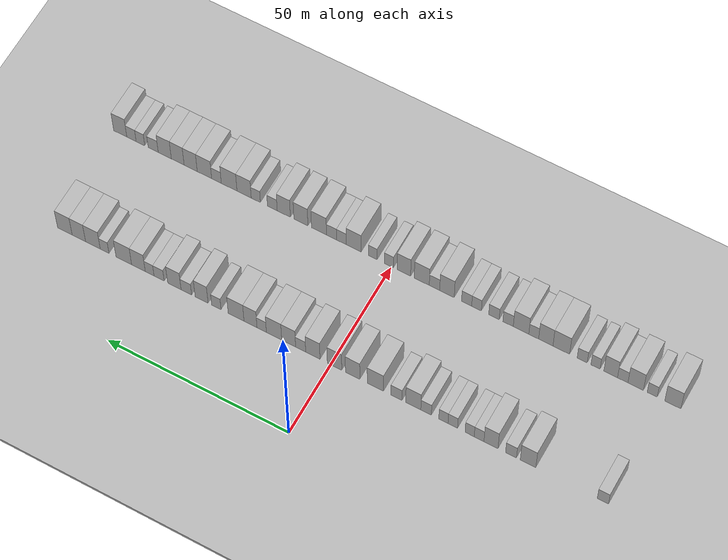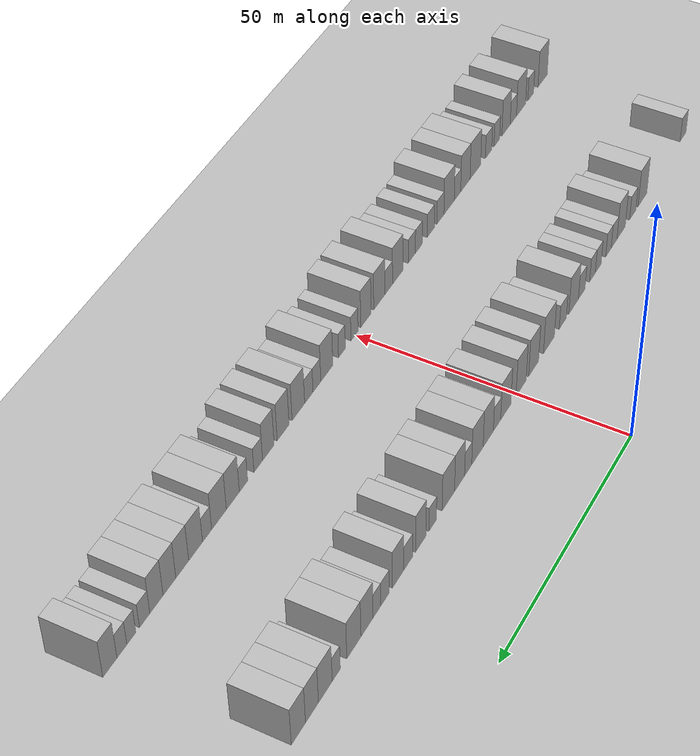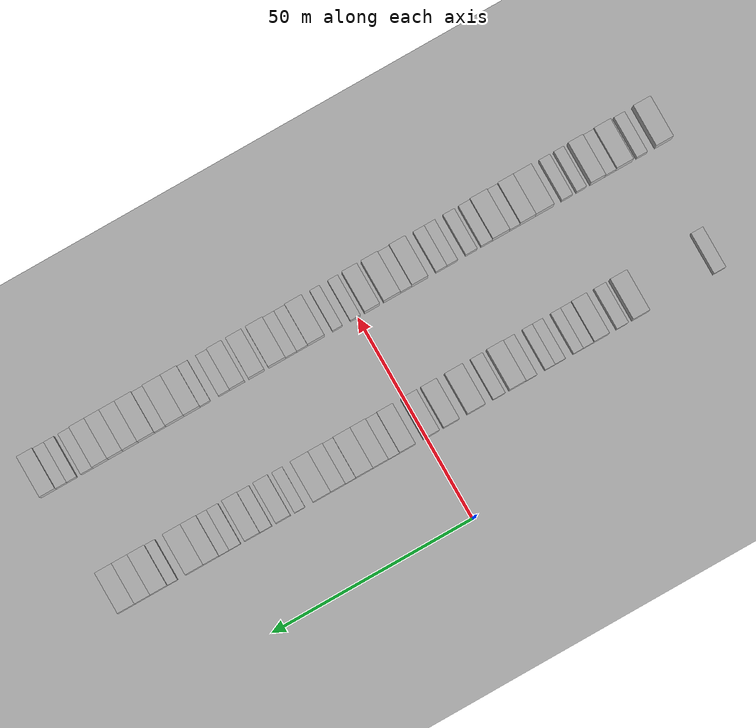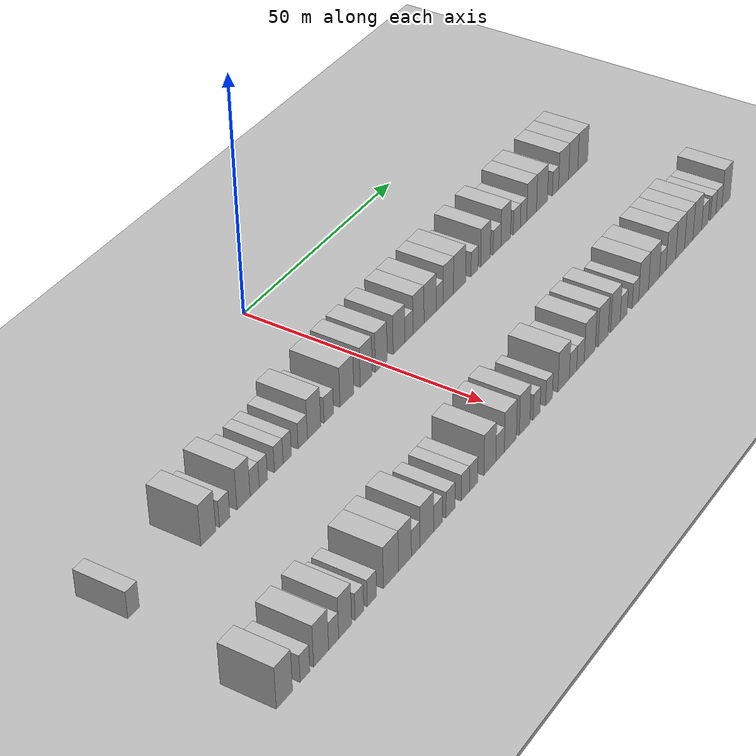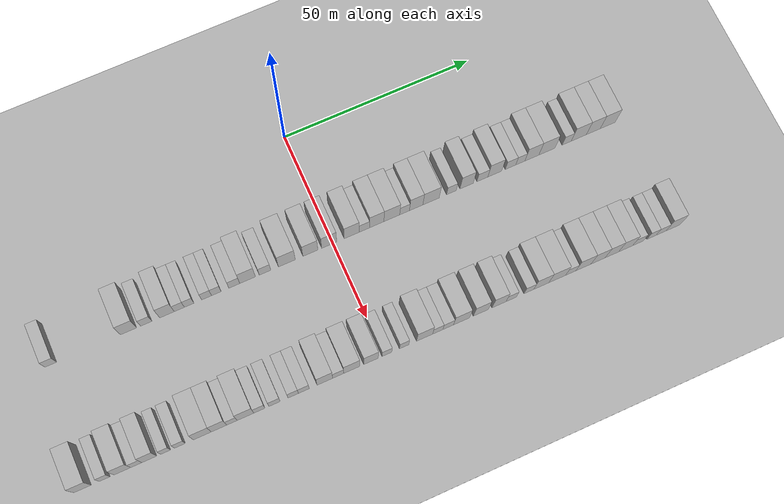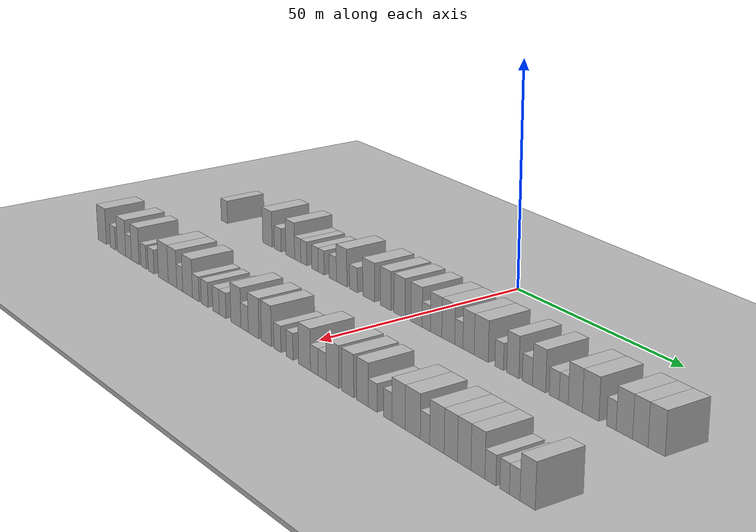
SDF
<sdf version="1.6">
 <world name="default">
  <include><name>ground_plane_1</name><uri>model://HANNAS_ground_plane</uri></include>
  <include>
   <name>ground_plane_2</name>
   <uri>model://HANNAS_ground_plane</uri>
   <pose>100 0 0  0 0 0</pose>
  </include>
  <model name="building_36">
   <static>1</static>
   <pose>25.0000 -72.6482 0 0.000000 0.000000 0.000000</pose>
   <link name="link">
    <pose>0 0 3.00 0 0 0</pose>
    <collision name="collision"><geometry><box><size>10.0000 2.9316 6.0000</size></box></geometry></collision>
    <visual name="visual">
     <cast_shadows>0</cast_shadows>
     <geometry><box><size>10.0000 2.9316 6.0000</size></box></geometry>
     <material>
      <script>
       <uri>model://HANNAS_wall/materials/scripts</uri>
       <uri>model://HANNAS_wall/materials/textures</uri>
       <name>vrc/HANNAS_wall</name>
      </script>
     </material>
    </visual>
   </link>
  </model>
  <model name="building_37">
   <static>1</static>
   <pose>25.0000 -53.0157 0 0.000000 0.000000 0.000000</pose>
   <link name="link">
    <pose>0 0 4.50 0 0 0</pose>
    <collision name="collision"><geometry><box><size>10.0000 4.1112 9.0000</size></box></geometry></collision>
    <visual name="visual">
     <cast_shadows>0</cast_shadows>
     <geometry><box><size>10.0000 4.1112 9.0000</size></box></geometry>
     <material>
      <script>
       <uri>model://HANNAS_wall/materials/scripts</uri>
       <uri>model://HANNAS_wall/materials/textures</uri>
       <name>vrc/HANNAS_wall</name>
      </script>
     </material>
    </visual>
   </link>
  </model>
  <model name="building_38">
   <static>1</static>
   <pose>25.0000 -48.5144 0 0.000000 0.000000 0.000000</pose>
   <link name="link">
    <pose>0 0 3.00 0 0 0</pose>
    <collision name="collision"><geometry><box><size>10.0000 2.8913 6.0000</size></box></geometry></collision>
    <visual name="visual">
     <cast_shadows>0</cast_shadows>
     <geometry><box><size>10.0000 2.8913 6.0000</size></box></geometry>
     <material>
      <script>
       <uri>model://HANNAS_wall/materials/scripts</uri>
       <uri>model://HANNAS_wall/materials/textures</uri>
       <name>vrc/HANNAS_wall</name>
      </script>
     </material>
    </visual>
   </link>
  </model>
  <model name="building_39">
   <static>1</static>
   <pose>25.0000 -43.2031 0 0.000000 0.000000 0.000000</pose>
   <link name="link">
    <pose>0 0 4.50 0 0 0</pose>
    <collision name="collision"><geometry><box><size>10.0000 3.7314 9.0000</size></box></geometry></collision>
    <visual name="visual">
     <cast_shadows>0</cast_shadows>
     <geometry><box><size>10.0000 3.7314 9.0000</size></box></geometry>
     <material>
      <script>
       <uri>model://HANNAS_wall/materials/scripts</uri>
       <uri>model://HANNAS_wall/materials/textures</uri>
       <name>vrc/HANNAS_wall</name>
      </script>
     </material>
    </visual>
   </link>
  </model>
  <model name="building_40">
   <static>1</static>
   <pose>25.0000 -40.0389 0 0.000000 0.000000 0.000000</pose>
   <link name="link">
    <pose>0 0 3.00 0 0 0</pose>
    <collision name="collision"><geometry><box><size>10.0000 2.5972 6.0000</size></box></geometry></collision>
    <visual name="visual">
     <cast_shadows>0</cast_shadows>
     <geometry><box><size>10.0000 2.5972 6.0000</size></box></geometry>
     <material>
      <script>
       <uri>model://HANNAS_wall/materials/scripts</uri>
       <uri>model://HANNAS_wall/materials/textures</uri>
       <name>vrc/HANNAS_wall</name>
      </script>
     </material>
    </visual>
   </link>
  </model>
  <model name="building_41">
   <static>1</static>
   <pose>25.0000 -37.5212 0 0.000000 0.000000 0.000000</pose>
   <link name="link">
    <pose>0 0 3.00 0 0 0</pose>
    <collision name="collision"><geometry><box><size>10.0000 2.4381 6.0000</size></box></geometry></collision>
    <visual name="visual">
     <cast_shadows>0</cast_shadows>
     <geometry><box><size>10.0000 2.4381 6.0000</size></box></geometry>
     <material>
      <script>
       <uri>model://HANNAS_wall/materials/scripts</uri>
       <uri>model://HANNAS_wall/materials/textures</uri>
       <name>vrc/HANNAS_wall</name>
      </script>
     </material>
    </visual>
   </link>
  </model>
  <model name="building_42">
   <static>1</static>
   <pose>25.0000 -33.0255 0 0.000000 0.000000 0.000000</pose>
   <link name="link">
    <pose>0 0 3.00 0 0 0</pose>
    <collision name="collision"><geometry><box><size>10.0000 2.5532 6.0000</size></box></geometry></collision>
    <visual name="visual">
     <cast_shadows>0</cast_shadows>
     <geometry><box><size>10.0000 2.5532 6.0000</size></box></geometry>
     <material>
      <script>
       <uri>model://HANNAS_wall/materials/scripts</uri>
       <uri>model://HANNAS_wall/materials/textures</uri>
       <name>vrc/HANNAS_wall</name>
      </script>
     </material>
    </visual>
   </link>
  </model>
  <model name="building_43">
   <static>1</static>
   <pose>25.0000 -30.5121 0 0.000000 0.000000 0.000000</pose>
   <link name="link">
    <pose>0 0 3.00 0 0 0</pose>
    <collision name="collision"><geometry><box><size>10.0000 2.4736 6.0000</size></box></geometry></collision>
    <visual name="visual">
     <cast_shadows>0</cast_shadows>
     <geometry><box><size>10.0000 2.4736 6.0000</size></box></geometry>
     <material>
      <script>
       <uri>model://HANNAS_wall/materials/scripts</uri>
       <uri>model://HANNAS_wall/materials/textures</uri>
       <name>vrc/HANNAS_wall</name>
      </script>
     </material>
    </visual>
   </link>
  </model>
  <model name="building_44">
   <static>1</static>
   <pose>25.0000 -25.8657 0 0.000000 0.000000 0.000000</pose>
   <link name="link">
    <pose>0 0 3.00 0 0 0</pose>
    <collision name="collision"><geometry><box><size>10.0000 2.8192 6.0000</size></box></geometry></collision>
    <visual name="visual">
     <cast_shadows>0</cast_shadows>
     <geometry><box><size>10.0000 2.8192 6.0000</size></box></geometry>
     <material>
      <script>
       <uri>model://HANNAS_wall/materials/scripts</uri>
       <uri>model://HANNAS_wall/materials/textures</uri>
       <name>vrc/HANNAS_wall</name>
      </script>
     </material>
    </visual>
   </link>
  </model>
  <model name="building_45">
   <static>1</static>
   <pose>25.0000 -22.4198 0 0.000000 0.000000 0.000000</pose>
   <link name="link">
    <pose>0 0 4.50 0 0 0</pose>
    <collision name="collision"><geometry><box><size>10.0000 4.0725 9.0000</size></box></geometry></collision>
    <visual name="visual">
     <cast_shadows>0</cast_shadows>
     <geometry><box><size>10.0000 4.0725 9.0000</size></box></geometry>
     <material>
      <script>
       <uri>model://HANNAS_wall/materials/scripts</uri>
       <uri>model://HANNAS_wall/materials/textures</uri>
       <name>vrc/HANNAS_wall</name>
      </script>
     </material>
    </visual>
   </link>
  </model>
  <model name="building_46">
   <static>1</static>
   <pose>25.0000 -17.8843 0 0.000000 0.000000 0.000000</pose>
   <link name="link">
    <pose>0 0 3.00 0 0 0</pose>
    <collision name="collision"><geometry><box><size>10.0000 2.9986 6.0000</size></box></geometry></collision>
    <visual name="visual">
     <cast_shadows>0</cast_shadows>
     <geometry><box><size>10.0000 2.9986 6.0000</size></box></geometry>
     <material>
      <script>
       <uri>model://HANNAS_wall/materials/scripts</uri>
       <uri>model://HANNAS_wall/materials/textures</uri>
       <name>vrc/HANNAS_wall</name>
      </script>
     </material>
    </visual>
   </link>
  </model>
  <model name="building_47">
   <static>1</static>
   <pose>25.0000 -12.1722 0 0.000000 0.000000 0.000000</pose>
   <link name="link">
    <pose>0 0 4.50 0 0 0</pose>
    <collision name="collision"><geometry><box><size>10.0000 4.4255 9.0000</size></box></geometry></collision>
    <visual name="visual">
     <cast_shadows>0</cast_shadows>
     <geometry><box><size>10.0000 4.4255 9.0000</size></box></geometry>
     <material>
      <script>
       <uri>model://HANNAS_wall/materials/scripts</uri>
       <uri>model://HANNAS_wall/materials/textures</uri>
       <name>vrc/HANNAS_wall</name>
      </script>
     </material>
    </visual>
   </link>
  </model>
  <model name="building_48">
   <static>1</static>
   <pose>25.0000 -5.9985 0 0.000000 0.000000 0.000000</pose>
   <link name="link">
    <pose>0 0 4.50 0 0 0</pose>
    <collision name="collision"><geometry><box><size>10.0000 3.9220 9.0000</size></box></geometry></collision>
    <visual name="visual">
     <cast_shadows>0</cast_shadows>
     <geometry><box><size>10.0000 3.9220 9.0000</size></box></geometry>
     <material>
      <script>
       <uri>model://HANNAS_wall/materials/scripts</uri>
       <uri>model://HANNAS_wall/materials/textures</uri>
       <name>vrc/HANNAS_wall</name>
      </script>
     </material>
    </visual>
   </link>
  </model>
  <model name="building_49">
   <static>1</static>
   <pose>25.0000 -1.0653 0 0.000000 0.000000 0.000000</pose>
   <link name="link">
    <pose>0 0 4.50 0 0 0</pose>
    <collision name="collision"><geometry><box><size>10.0000 3.9443 9.0000</size></box></geometry></collision>
    <visual name="visual">
     <cast_shadows>0</cast_shadows>
     <geometry><box><size>10.0000 3.9443 9.0000</size></box></geometry>
     <material>
      <script>
       <uri>model://HANNAS_wall/materials/scripts</uri>
       <uri>model://HANNAS_wall/materials/textures</uri>
       <name>vrc/HANNAS_wall</name>
      </script>
     </material>
    </visual>
   </link>
  </model>
  <model name="building_50">
   <static>1</static>
   <pose>25.0000 4.8676 0 0.000000 0.000000 0.000000</pose>
   <link name="link">
    <pose>0 0 4.50 0 0 0</pose>
    <collision name="collision"><geometry><box><size>10.0000 3.9215 9.0000</size></box></geometry></collision>
    <visual name="visual">
     <cast_shadows>0</cast_shadows>
     <geometry><box><size>10.0000 3.9215 9.0000</size></box></geometry>
     <material>
      <script>
       <uri>model://HANNAS_wall/materials/scripts</uri>
       <uri>model://HANNAS_wall/materials/textures</uri>
       <name>vrc/HANNAS_wall</name>
      </script>
     </material>
    </visual>
   </link>
  </model>
  <model name="building_51">
   <static>1</static>
   <pose>25.0000 8.2137 0 0.000000 0.000000 0.000000</pose>
   <link name="link">
    <pose>0 0 3.00 0 0 0</pose>
    <collision name="collision"><geometry><box><size>10.0000 2.7707 6.0000</size></box></geometry></collision>
    <visual name="visual">
     <cast_shadows>0</cast_shadows>
     <geometry><box><size>10.0000 2.7707 6.0000</size></box></geometry>
     <material>
      <script>
       <uri>model://HANNAS_wall/materials/scripts</uri>
       <uri>model://HANNAS_wall/materials/textures</uri>
       <name>vrc/HANNAS_wall</name>
      </script>
     </material>
    </visual>
   </link>
  </model>
  <model name="building_52">
   <static>1</static>
   <pose>25.0000 11.5132 0 0.000000 0.000000 0.000000</pose>
   <link name="link">
    <pose>0 0 4.50 0 0 0</pose>
    <collision name="collision"><geometry><box><size>10.0000 3.8282 9.0000</size></box></geometry></collision>
    <visual name="visual">
     <cast_shadows>0</cast_shadows>
     <geometry><box><size>10.0000 3.8282 9.0000</size></box></geometry>
     <material>
      <script>
       <uri>model://HANNAS_wall/materials/scripts</uri>
       <uri>model://HANNAS_wall/materials/textures</uri>
       <name>vrc/HANNAS_wall</name>
      </script>
     </material>
    </visual>
   </link>
  </model>
  <model name="building_53">
   <static>1</static>
   <pose>25.0000 15.5393 0 0.000000 0.000000 0.000000</pose>
   <link name="link">
    <pose>0 0 4.50 0 0 0</pose>
    <collision name="collision"><geometry><box><size>10.0000 4.2240 9.0000</size></box></geometry></collision>
    <visual name="visual">
     <cast_shadows>0</cast_shadows>
     <geometry><box><size>10.0000 4.2240 9.0000</size></box></geometry>
     <material>
      <script>
       <uri>model://HANNAS_wall/materials/scripts</uri>
       <uri>model://HANNAS_wall/materials/textures</uri>
       <name>vrc/HANNAS_wall</name>
      </script>
     </material>
    </visual>
   </link>
  </model>
  <model name="building_54">
   <static>1</static>
   <pose>25.0000 18.9498 0 0.000000 0.000000 0.000000</pose>
   <link name="link">
    <pose>0 0 3.00 0 0 0</pose>
    <collision name="collision"><geometry><box><size>10.0000 2.5970 6.0000</size></box></geometry></collision>
    <visual name="visual">
     <cast_shadows>0</cast_shadows>
     <geometry><box><size>10.0000 2.5970 6.0000</size></box></geometry>
     <material>
      <script>
       <uri>model://HANNAS_wall/materials/scripts</uri>
       <uri>model://HANNAS_wall/materials/textures</uri>
       <name>vrc/HANNAS_wall</name>
      </script>
     </material>
    </visual>
   </link>
  </model>
  <model name="building_55">
   <static>1</static>
   <pose>25.0000 22.0485 0 0.000000 0.000000 0.000000</pose>
   <link name="link">
    <pose>0 0 4.50 0 0 0</pose>
    <collision name="collision"><geometry><box><size>10.0000 3.6004 9.0000</size></box></geometry></collision>
    <visual name="visual">
     <cast_shadows>0</cast_shadows>
     <geometry><box><size>10.0000 3.6004 9.0000</size></box></geometry>
     <material>
      <script>
       <uri>model://HANNAS_wall/materials/scripts</uri>
       <uri>model://HANNAS_wall/materials/textures</uri>
       <name>vrc/HANNAS_wall</name>
      </script>
     </material>
    </visual>
   </link>
  </model>
  <model name="building_56">
   <static>1</static>
   <pose>25.0000 26.0477 0 0.000000 0.000000 0.000000</pose>
   <link name="link">
    <pose>0 0 4.50 0 0 0</pose>
    <collision name="collision"><geometry><box><size>10.0000 4.3980 9.0000</size></box></geometry></collision>
    <visual name="visual">
     <cast_shadows>0</cast_shadows>
     <geometry><box><size>10.0000 4.3980 9.0000</size></box></geometry>
     <material>
      <script>
       <uri>model://HANNAS_wall/materials/scripts</uri>
       <uri>model://HANNAS_wall/materials/textures</uri>
       <name>vrc/HANNAS_wall</name>
      </script>
     </material>
    </visual>
   </link>
  </model>
  <model name="building_57">
   <static>1</static>
   <pose>25.0000 31.5481 0 0.000000 0.000000 0.000000</pose>
   <link name="link">
    <pose>0 0 3.00 0 0 0</pose>
    <collision name="collision"><geometry><box><size>10.0000 2.6028 6.0000</size></box></geometry></collision>
    <visual name="visual">
     <cast_shadows>0</cast_shadows>
     <geometry><box><size>10.0000 2.6028 6.0000</size></box></geometry>
     <material>
      <script>
       <uri>model://HANNAS_wall/materials/scripts</uri>
       <uri>model://HANNAS_wall/materials/textures</uri>
       <name>vrc/HANNAS_wall</name>
      </script>
     </material>
    </visual>
   </link>
  </model>
  <model name="building_58">
   <static>1</static>
   <pose>25.0000 35.6523 0 0.000000 0.000000 0.000000</pose>
   <link name="link">
    <pose>0 0 4.50 0 0 0</pose>
    <collision name="collision"><geometry><box><size>10.0000 3.6056 9.0000</size></box></geometry></collision>
    <visual name="visual">
     <cast_shadows>0</cast_shadows>
     <geometry><box><size>10.0000 3.6056 9.0000</size></box></geometry>
     <material>
      <script>
       <uri>model://HANNAS_wall/materials/scripts</uri>
       <uri>model://HANNAS_wall/materials/textures</uri>
       <name>vrc/HANNAS_wall</name>
      </script>
     </material>
    </visual>
   </link>
  </model>
  <model name="building_59">
   <static>1</static>
   <pose>25.0000 39.9330 0 0.000000 0.000000 0.000000</pose>
   <link name="link">
    <pose>0 0 3.00 0 0 0</pose>
    <collision name="collision"><geometry><box><size>10.0000 2.9558 6.0000</size></box></geometry></collision>
    <visual name="visual">
     <cast_shadows>0</cast_shadows>
     <geometry><box><size>10.0000 2.9558 6.0000</size></box></geometry>
     <material>
      <script>
       <uri>model://HANNAS_wall/materials/scripts</uri>
       <uri>model://HANNAS_wall/materials/textures</uri>
       <name>vrc/HANNAS_wall</name>
      </script>
     </material>
    </visual>
   </link>
  </model>
  <model name="building_60">
   <static>1</static>
   <pose>25.0000 43.2895 0 0.000000 0.000000 0.000000</pose>
   <link name="link">
    <pose>0 0 4.50 0 0 0</pose>
    <collision name="collision"><geometry><box><size>10.0000 3.7572 9.0000</size></box></geometry></collision>
    <visual name="visual">
     <cast_shadows>0</cast_shadows>
     <geometry><box><size>10.0000 3.7572 9.0000</size></box></geometry>
     <material>
      <script>
       <uri>model://HANNAS_wall/materials/scripts</uri>
       <uri>model://HANNAS_wall/materials/textures</uri>
       <name>vrc/HANNAS_wall</name>
      </script>
     </material>
    </visual>
   </link>
  </model>
  <model name="building_61">
   <static>1</static>
   <pose>25.0000 47.5904 0 0.000000 0.000000 0.000000</pose>
   <link name="link">
    <pose>0 0 3.00 0 0 0</pose>
    <collision name="collision"><geometry><box><size>10.0000 2.8447 6.0000</size></box></geometry></collision>
    <visual name="visual">
     <cast_shadows>0</cast_shadows>
     <geometry><box><size>10.0000 2.8447 6.0000</size></box></geometry>
     <material>
      <script>
       <uri>model://HANNAS_wall/materials/scripts</uri>
       <uri>model://HANNAS_wall/materials/textures</uri>
       <name>vrc/HANNAS_wall</name>
      </script>
     </material>
    </visual>
   </link>
  </model>
  <model name="building_62">
   <static>1</static>
   <pose>25.0000 50.2499 0 0.000000 0.000000 0.000000</pose>
   <link name="link">
    <pose>0 0 3.00 0 0 0</pose>
    <collision name="collision"><geometry><box><size>10.0000 2.4743 6.0000</size></box></geometry></collision>
    <visual name="visual">
     <cast_shadows>0</cast_shadows>
     <geometry><box><size>10.0000 2.4743 6.0000</size></box></geometry>
     <material>
      <script>
       <uri>model://HANNAS_wall/materials/scripts</uri>
       <uri>model://HANNAS_wall/materials/textures</uri>
       <name>vrc/HANNAS_wall</name>
      </script>
     </material>
    </visual>
   </link>
  </model>
  <model name="building_63">
   <static>1</static>
   <pose>25.0000 53.4135 0 0.000000 0.000000 0.000000</pose>
   <link name="link">
    <pose>0 0 4.50 0 0 0</pose>
    <collision name="collision"><geometry><box><size>10.0000 3.8528 9.0000</size></box></geometry></collision>
    <visual name="visual">
     <cast_shadows>0</cast_shadows>
     <geometry><box><size>10.0000 3.8528 9.0000</size></box></geometry>
     <material>
      <script>
       <uri>model://HANNAS_wall/materials/scripts</uri>
       <uri>model://HANNAS_wall/materials/textures</uri>
       <name>vrc/HANNAS_wall</name>
      </script>
     </material>
    </visual>
   </link>
  </model>
  <model name="building_64">
   <static>1</static>
   <pose>25.0000 57.5541 0 0.000000 0.000000 0.000000</pose>
   <link name="link">
    <pose>0 0 4.50 0 0 0</pose>
    <collision name="collision"><geometry><box><size>10.0000 4.4286 9.0000</size></box></geometry></collision>
    <visual name="visual">
     <cast_shadows>0</cast_shadows>
     <geometry><box><size>10.0000 4.4286 9.0000</size></box></geometry>
     <material>
      <script>
       <uri>model://HANNAS_wall/materials/scripts</uri>
       <uri>model://HANNAS_wall/materials/textures</uri>
       <name>vrc/HANNAS_wall</name>
      </script>
     </material>
    </visual>
   </link>
  </model>
  <model name="building_65">
   <static>1</static>
   <pose>25.0000 63.0092 0 0.000000 0.000000 0.000000</pose>
   <link name="link">
    <pose>0 0 3.00 0 0 0</pose>
    <collision name="collision"><geometry><box><size>10.0000 2.4815 6.0000</size></box></geometry></collision>
    <visual name="visual">
     <cast_shadows>0</cast_shadows>
     <geometry><box><size>10.0000 2.4815 6.0000</size></box></geometry>
     <material>
      <script>
       <uri>model://HANNAS_wall/materials/scripts</uri>
       <uri>model://HANNAS_wall/materials/textures</uri>
       <name>vrc/HANNAS_wall</name>
      </script>
     </material>
    </visual>
   </link>
  </model>
  <model name="building_66">
   <static>1</static>
   <pose>25.0000 66.3426 0 0.000000 0.000000 0.000000</pose>
   <link name="link">
    <pose>0 0 4.50 0 0 0</pose>
    <collision name="collision"><geometry><box><size>10.0000 4.1854 9.0000</size></box></geometry></collision>
    <visual name="visual">
     <cast_shadows>0</cast_shadows>
     <geometry><box><size>10.0000 4.1854 9.0000</size></box></geometry>
     <material>
      <script>
       <uri>model://HANNAS_wall/materials/scripts</uri>
       <uri>model://HANNAS_wall/materials/textures</uri>
       <name>vrc/HANNAS_wall</name>
      </script>
     </material>
    </visual>
   </link>
  </model>
  <model name="building_67">
   <static>1</static>
   <pose>25.0000 70.3587 0 0.000000 0.000000 0.000000</pose>
   <link name="link">
    <pose>0 0 4.50 0 0 0</pose>
    <collision name="collision"><geometry><box><size>10.0000 3.8470 9.0000</size></box></geometry></collision>
    <visual name="visual">
     <cast_shadows>0</cast_shadows>
     <geometry><box><size>10.0000 3.8470 9.0000</size></box></geometry>
     <material>
      <script>
       <uri>model://HANNAS_wall/materials/scripts</uri>
       <uri>model://HANNAS_wall/materials/textures</uri>
       <name>vrc/HANNAS_wall</name>
      </script>
     </material>
    </visual>
   </link>
  </model>
  <model name="building_68">
   <static>1</static>
   <pose>25.0000 74.3656 0 0.000000 0.000000 0.000000</pose>
   <link name="link">
    <pose>0 0 4.50 0 0 0</pose>
    <collision name="collision"><geometry><box><size>10.0000 4.1667 9.0000</size></box></geometry></collision>
    <visual name="visual">
     <cast_shadows>0</cast_shadows>
     <geometry><box><size>10.0000 4.1667 9.0000</size></box></geometry>
     <material>
      <script>
       <uri>model://HANNAS_wall/materials/scripts</uri>
       <uri>model://HANNAS_wall/materials/textures</uri>
       <name>vrc/HANNAS_wall</name>
      </script>
     </material>
    </visual>
   </link>
  </model>
  <model name="building_146">
   <static>1</static>
   <pose>55.0000 -75.9907 0 0.000000 0.000000 0.000000</pose>
   <link name="link">
    <pose>0 0 4.50 0 0 0</pose>
    <collision name="collision"><geometry><box><size>10.0000 4.2626 9.0000</size></box></geometry></collision>
    <visual name="visual">
     <cast_shadows>0</cast_shadows>
     <geometry><box><size>10.0000 4.2626 9.0000</size></box></geometry>
     <material>
      <script>
       <uri>model://HANNAS_wall/materials/scripts</uri>
       <uri>model://HANNAS_wall/materials/textures</uri>
       <name>vrc/HANNAS_wall</name>
      </script>
     </material>
    </visual>
   </link>
  </model>
  <model name="building_147">
   <static>1</static>
   <pose>55.0000 -70.5424 0 0.000000 0.000000 0.000000</pose>
   <link name="link">
    <pose>0 0 3.00 0 0 0</pose>
    <collision name="collision"><geometry><box><size>10.0000 2.6340 6.0000</size></box></geometry></collision>
    <visual name="visual">
     <cast_shadows>0</cast_shadows>
     <geometry><box><size>10.0000 2.6340 6.0000</size></box></geometry>
     <material>
      <script>
       <uri>model://HANNAS_wall/materials/scripts</uri>
       <uri>model://HANNAS_wall/materials/textures</uri>
       <name>vrc/HANNAS_wall</name>
      </script>
     </material>
    </visual>
   </link>
  </model>
  <model name="building_148">
   <static>1</static>
   <pose>55.0000 -66.1726 0 0.000000 0.000000 0.000000</pose>
   <link name="link">
    <pose>0 0 4.50 0 0 0</pose>
    <collision name="collision"><geometry><box><size>10.0000 4.1058 9.0000</size></box></geometry></collision>
    <visual name="visual">
     <cast_shadows>0</cast_shadows>
     <geometry><box><size>10.0000 4.1058 9.0000</size></box></geometry>
     <material>
      <script>
       <uri>model://HANNAS_wall/materials/scripts</uri>
       <uri>model://HANNAS_wall/materials/textures</uri>
       <name>vrc/HANNAS_wall</name>
      </script>
     </material>
    </visual>
   </link>
  </model>
  <model name="building_149">
   <static>1</static>
   <pose>55.0000 -62.7372 0 0.000000 0.000000 0.000000</pose>
   <link name="link">
    <pose>0 0 3.00 0 0 0</pose>
    <collision name="collision"><geometry><box><size>10.0000 2.7651 6.0000</size></box></geometry></collision>
    <visual name="visual">
     <cast_shadows>0</cast_shadows>
     <geometry><box><size>10.0000 2.7651 6.0000</size></box></geometry>
     <material>
      <script>
       <uri>model://HANNAS_wall/materials/scripts</uri>
       <uri>model://HANNAS_wall/materials/textures</uri>
       <name>vrc/HANNAS_wall</name>
      </script>
     </material>
    </visual>
   </link>
  </model>
  <model name="building_150">
   <static>1</static>
   <pose>55.0000 -59.5318 0 0.000000 0.000000 0.000000</pose>
   <link name="link">
    <pose>0 0 4.50 0 0 0</pose>
    <collision name="collision"><geometry><box><size>10.0000 3.6457 9.0000</size></box></geometry></collision>
    <visual name="visual">
     <cast_shadows>0</cast_shadows>
     <geometry><box><size>10.0000 3.6457 9.0000</size></box></geometry>
     <material>
      <script>
       <uri>model://HANNAS_wall/materials/scripts</uri>
       <uri>model://HANNAS_wall/materials/textures</uri>
       <name>vrc/HANNAS_wall</name>
      </script>
     </material>
    </visual>
   </link>
  </model>
  <model name="building_151">
   <static>1</static>
   <pose>55.0000 -55.4916 0 0.000000 0.000000 0.000000</pose>
   <link name="link">
    <pose>0 0 3.00 0 0 0</pose>
    <collision name="collision"><geometry><box><size>10.0000 2.4347 6.0000</size></box></geometry></collision>
    <visual name="visual">
     <cast_shadows>0</cast_shadows>
     <geometry><box><size>10.0000 2.4347 6.0000</size></box></geometry>
     <material>
      <script>
       <uri>model://HANNAS_wall/materials/scripts</uri>
       <uri>model://HANNAS_wall/materials/textures</uri>
       <name>vrc/HANNAS_wall</name>
      </script>
     </material>
    </visual>
   </link>
  </model>
  <model name="building_152">
   <static>1</static>
   <pose>55.0000 -51.9256 0 0.000000 0.000000 0.000000</pose>
   <link name="link">
    <pose>0 0 3.00 0 0 0</pose>
    <collision name="collision"><geometry><box><size>10.0000 2.6974 6.0000</size></box></geometry></collision>
    <visual name="visual">
     <cast_shadows>0</cast_shadows>
     <geometry><box><size>10.0000 2.6974 6.0000</size></box></geometry>
     <material>
      <script>
       <uri>model://HANNAS_wall/materials/scripts</uri>
       <uri>model://HANNAS_wall/materials/textures</uri>
       <name>vrc/HANNAS_wall</name>
      </script>
     </material>
    </visual>
   </link>
  </model>
  <model name="building_153">
   <static>1</static>
   <pose>55.0000 -46.3366 0 0.000000 0.000000 0.000000</pose>
   <link name="link">
    <pose>0 0 4.50 0 0 0</pose>
    <collision name="collision"><geometry><box><size>10.0000 4.4806 9.0000</size></box></geometry></collision>
    <visual name="visual">
     <cast_shadows>0</cast_shadows>
     <geometry><box><size>10.0000 4.4806 9.0000</size></box></geometry>
     <material>
      <script>
       <uri>model://HANNAS_wall/materials/scripts</uri>
       <uri>model://HANNAS_wall/materials/textures</uri>
       <name>vrc/HANNAS_wall</name>
      </script>
     </material>
    </visual>
   </link>
  </model>
  <model name="building_154">
   <static>1</static>
   <pose>55.0000 -42.1694 0 0.000000 0.000000 0.000000</pose>
   <link name="link">
    <pose>0 0 4.50 0 0 0</pose>
    <collision name="collision"><geometry><box><size>10.0000 3.8538 9.0000</size></box></geometry></collision>
    <visual name="visual">
     <cast_shadows>0</cast_shadows>
     <geometry><box><size>10.0000 3.8538 9.0000</size></box></geometry>
     <material>
      <script>
       <uri>model://HANNAS_wall/materials/scripts</uri>
       <uri>model://HANNAS_wall/materials/textures</uri>
       <name>vrc/HANNAS_wall</name>
      </script>
     </material>
    </visual>
   </link>
  </model>
  <model name="building_155">
   <static>1</static>
   <pose>55.0000 -38.9187 0 0.000000 0.000000 0.000000</pose>
   <link name="link">
    <pose>0 0 3.00 0 0 0</pose>
    <collision name="collision"><geometry><box><size>10.0000 2.6476 6.0000</size></box></geometry></collision>
    <visual name="visual">
     <cast_shadows>0</cast_shadows>
     <geometry><box><size>10.0000 2.6476 6.0000</size></box></geometry>
     <material>
      <script>
       <uri>model://HANNAS_wall/materials/scripts</uri>
       <uri>model://HANNAS_wall/materials/textures</uri>
       <name>vrc/HANNAS_wall</name>
      </script>
     </material>
    </visual>
   </link>
  </model>
  <model name="building_156">
   <static>1</static>
   <pose>55.0000 -35.4906 0 0.000000 0.000000 0.000000</pose>
   <link name="link">
    <pose>0 0 4.50 0 0 0</pose>
    <collision name="collision"><geometry><box><size>10.0000 4.2087 9.0000</size></box></geometry></collision>
    <visual name="visual">
     <cast_shadows>0</cast_shadows>
     <geometry><box><size>10.0000 4.2087 9.0000</size></box></geometry>
     <material>
      <script>
       <uri>model://HANNAS_wall/materials/scripts</uri>
       <uri>model://HANNAS_wall/materials/textures</uri>
       <name>vrc/HANNAS_wall</name>
      </script>
     </material>
    </visual>
   </link>
  </model>
  <model name="building_157">
   <static>1</static>
   <pose>55.0000 -31.9748 0 0.000000 0.000000 0.000000</pose>
   <link name="link">
    <pose>0 0 3.00 0 0 0</pose>
    <collision name="collision"><geometry><box><size>10.0000 2.8229 6.0000</size></box></geometry></collision>
    <visual name="visual">
     <cast_shadows>0</cast_shadows>
     <geometry><box><size>10.0000 2.8229 6.0000</size></box></geometry>
     <material>
      <script>
       <uri>model://HANNAS_wall/materials/scripts</uri>
       <uri>model://HANNAS_wall/materials/textures</uri>
       <name>vrc/HANNAS_wall</name>
      </script>
     </material>
    </visual>
   </link>
  </model>
  <model name="building_158">
   <static>1</static>
   <pose>55.0000 -28.1432 0 0.000000 0.000000 0.000000</pose>
   <link name="link">
    <pose>0 0 3.00 0 0 0</pose>
    <collision name="collision"><geometry><box><size>10.0000 2.8403 6.0000</size></box></geometry></collision>
    <visual name="visual">
     <cast_shadows>0</cast_shadows>
     <geometry><box><size>10.0000 2.8403 6.0000</size></box></geometry>
     <material>
      <script>
       <uri>model://HANNAS_wall/materials/scripts</uri>
       <uri>model://HANNAS_wall/materials/textures</uri>
       <name>vrc/HANNAS_wall</name>
      </script>
     </material>
    </visual>
   </link>
  </model>
  <model name="building_159">
   <static>1</static>
   <pose>55.0000 -23.4024 0 0.000000 0.000000 0.000000</pose>
   <link name="link">
    <pose>0 0 3.00 0 0 0</pose>
    <collision name="collision"><geometry><box><size>10.0000 2.6413 6.0000</size></box></geometry></collision>
    <visual name="visual">
     <cast_shadows>0</cast_shadows>
     <geometry><box><size>10.0000 2.6413 6.0000</size></box></geometry>
     <material>
      <script>
       <uri>model://HANNAS_wall/materials/scripts</uri>
       <uri>model://HANNAS_wall/materials/textures</uri>
       <name>vrc/HANNAS_wall</name>
      </script>
     </material>
    </visual>
   </link>
  </model>
  <model name="building_160">
   <static>1</static>
   <pose>55.0000 -20.6963 0 0.000000 0.000000 0.000000</pose>
   <link name="link">
    <pose>0 0 3.00 0 0 0</pose>
    <collision name="collision"><geometry><box><size>10.0000 2.7710 6.0000</size></box></geometry></collision>
    <visual name="visual">
     <cast_shadows>0</cast_shadows>
     <geometry><box><size>10.0000 2.7710 6.0000</size></box></geometry>
     <material>
      <script>
       <uri>model://HANNAS_wall/materials/scripts</uri>
       <uri>model://HANNAS_wall/materials/textures</uri>
       <name>vrc/HANNAS_wall</name>
      </script>
     </material>
    </visual>
   </link>
  </model>
  <model name="building_161">
   <static>1</static>
   <pose>55.0000 -15.3215 0 0.000000 0.000000 0.000000</pose>
   <link name="link">
    <pose>0 0 4.50 0 0 0</pose>
    <collision name="collision"><geometry><box><size>10.0000 3.9785 9.0000</size></box></geometry></collision>
    <visual name="visual">
     <cast_shadows>0</cast_shadows>
     <geometry><box><size>10.0000 3.9785 9.0000</size></box></geometry>
     <material>
      <script>
       <uri>model://HANNAS_wall/materials/scripts</uri>
       <uri>model://HANNAS_wall/materials/textures</uri>
       <name>vrc/HANNAS_wall</name>
      </script>
     </material>
    </visual>
   </link>
  </model>
  <model name="building_162">
   <static>1</static>
   <pose>55.0000 -11.9047 0 0.000000 0.000000 0.000000</pose>
   <link name="link">
    <pose>0 0 3.00 0 0 0</pose>
    <collision name="collision"><geometry><box><size>10.0000 2.8550 6.0000</size></box></geometry></collision>
    <visual name="visual">
     <cast_shadows>0</cast_shadows>
     <geometry><box><size>10.0000 2.8550 6.0000</size></box></geometry>
     <material>
      <script>
       <uri>model://HANNAS_wall/materials/scripts</uri>
       <uri>model://HANNAS_wall/materials/textures</uri>
       <name>vrc/HANNAS_wall</name>
      </script>
     </material>
    </visual>
   </link>
  </model>
  <model name="building_163">
   <static>1</static>
   <pose>55.0000 -8.4136 0 0.000000 0.000000 0.000000</pose>
   <link name="link">
    <pose>0 0 4.50 0 0 0</pose>
    <collision name="collision"><geometry><box><size>10.0000 4.1273 9.0000</size></box></geometry></collision>
    <visual name="visual">
     <cast_shadows>0</cast_shadows>
     <geometry><box><size>10.0000 4.1273 9.0000</size></box></geometry>
     <material>
      <script>
       <uri>model://HANNAS_wall/materials/scripts</uri>
       <uri>model://HANNAS_wall/materials/textures</uri>
       <name>vrc/HANNAS_wall</name>
      </script>
     </material>
    </visual>
   </link>
  </model>
  <model name="building_164">
   <static>1</static>
   <pose>55.0000 -3.4805 0 0.000000 0.000000 0.000000</pose>
   <link name="link">
    <pose>0 0 4.50 0 0 0</pose>
    <collision name="collision"><geometry><box><size>10.0000 3.7389 9.0000</size></box></geometry></collision>
    <visual name="visual">
     <cast_shadows>0</cast_shadows>
     <geometry><box><size>10.0000 3.7389 9.0000</size></box></geometry>
     <material>
      <script>
       <uri>model://HANNAS_wall/materials/scripts</uri>
       <uri>model://HANNAS_wall/materials/textures</uri>
       <name>vrc/HANNAS_wall</name>
      </script>
     </material>
    </visual>
   </link>
  </model>
  <model name="building_165">
   <static>1</static>
   <pose>55.0000 0.6505 0 0.000000 0.000000 0.000000</pose>
   <link name="link">
    <pose>0 0 3.00 0 0 0</pose>
    <collision name="collision"><geometry><box><size>10.0000 2.5232 6.0000</size></box></geometry></collision>
    <visual name="visual">
     <cast_shadows>0</cast_shadows>
     <geometry><box><size>10.0000 2.5232 6.0000</size></box></geometry>
     <material>
      <script>
       <uri>model://HANNAS_wall/materials/scripts</uri>
       <uri>model://HANNAS_wall/materials/textures</uri>
       <name>vrc/HANNAS_wall</name>
      </script>
     </material>
    </visual>
   </link>
  </model>
  <model name="building_166">
   <static>1</static>
   <pose>55.0000 5.1251 0 0.000000 0.000000 0.000000</pose>
   <link name="link">
    <pose>0 0 3.00 0 0 0</pose>
    <collision name="collision"><geometry><box><size>10.0000 2.4260 6.0000</size></box></geometry></collision>
    <visual name="visual">
     <cast_shadows>0</cast_shadows>
     <geometry><box><size>10.0000 2.4260 6.0000</size></box></geometry>
     <material>
      <script>
       <uri>model://HANNAS_wall/materials/scripts</uri>
       <uri>model://HANNAS_wall/materials/textures</uri>
       <name>vrc/HANNAS_wall</name>
      </script>
     </material>
    </visual>
   </link>
  </model>
  <model name="building_167">
   <static>1</static>
   <pose>55.0000 10.4272 0 0.000000 0.000000 0.000000</pose>
   <link name="link">
    <pose>0 0 4.50 0 0 0</pose>
    <collision name="collision"><geometry><box><size>10.0000 4.1783 9.0000</size></box></geometry></collision>
    <visual name="visual">
     <cast_shadows>0</cast_shadows>
     <geometry><box><size>10.0000 4.1783 9.0000</size></box></geometry>
     <material>
      <script>
       <uri>model://HANNAS_wall/materials/scripts</uri>
       <uri>model://HANNAS_wall/materials/textures</uri>
       <name>vrc/HANNAS_wall</name>
      </script>
     </material>
    </visual>
   </link>
  </model>
  <model name="building_168">
   <static>1</static>
   <pose>55.0000 13.8626 0 0.000000 0.000000 0.000000</pose>
   <link name="link">
    <pose>0 0 3.00 0 0 0</pose>
    <collision name="collision"><geometry><box><size>10.0000 2.6924 6.0000</size></box></geometry></collision>
    <visual name="visual">
     <cast_shadows>0</cast_shadows>
     <geometry><box><size>10.0000 2.6924 6.0000</size></box></geometry>
     <material>
      <script>
       <uri>model://HANNAS_wall/materials/scripts</uri>
       <uri>model://HANNAS_wall/materials/textures</uri>
       <name>vrc/HANNAS_wall</name>
      </script>
     </material>
    </visual>
   </link>
  </model>
  <model name="building_169">
   <static>1</static>
   <pose>55.0000 16.6100 0 0.000000 0.000000 0.000000</pose>
   <link name="link">
    <pose>0 0 3.00 0 0 0</pose>
    <collision name="collision"><geometry><box><size>10.0000 2.8025 6.0000</size></box></geometry></collision>
    <visual name="visual">
     <cast_shadows>0</cast_shadows>
     <geometry><box><size>10.0000 2.8025 6.0000</size></box></geometry>
     <material>
      <script>
       <uri>model://HANNAS_wall/materials/scripts</uri>
       <uri>model://HANNAS_wall/materials/textures</uri>
       <name>vrc/HANNAS_wall</name>
      </script>
     </material>
    </visual>
   </link>
  </model>
  <model name="building_170">
   <static>1</static>
   <pose>55.0000 20.1219 0 0.000000 0.000000 0.000000</pose>
   <link name="link">
    <pose>0 0 4.50 0 0 0</pose>
    <collision name="collision"><geometry><box><size>10.0000 4.2214 9.0000</size></box></geometry></collision>
    <visual name="visual">
     <cast_shadows>0</cast_shadows>
     <geometry><box><size>10.0000 4.2214 9.0000</size></box></geometry>
     <material>
      <script>
       <uri>model://HANNAS_wall/materials/scripts</uri>
       <uri>model://HANNAS_wall/materials/textures</uri>
       <name>vrc/HANNAS_wall</name>
      </script>
     </material>
    </visual>
   </link>
  </model>
  <model name="building_171">
   <static>1</static>
   <pose>55.0000 25.1913 0 0.000000 0.000000 0.000000</pose>
   <link name="link">
    <pose>0 0 4.50 0 0 0</pose>
    <collision name="collision"><geometry><box><size>10.0000 3.9174 9.0000</size></box></geometry></collision>
    <visual name="visual">
     <cast_shadows>0</cast_shadows>
     <geometry><box><size>10.0000 3.9174 9.0000</size></box></geometry>
     <material>
      <script>
       <uri>model://HANNAS_wall/materials/scripts</uri>
       <uri>model://HANNAS_wall/materials/textures</uri>
       <name>vrc/HANNAS_wall</name>
      </script>
     </material>
    </visual>
   </link>
  </model>
  <model name="building_172">
   <static>1</static>
   <pose>55.0000 30.0034 0 0.000000 0.000000 0.000000</pose>
   <link name="link">
    <pose>0 0 4.50 0 0 0</pose>
    <collision name="collision"><geometry><box><size>10.0000 3.7068 9.0000</size></box></geometry></collision>
    <visual name="visual">
     <cast_shadows>0</cast_shadows>
     <geometry><box><size>10.0000 3.7068 9.0000</size></box></geometry>
     <material>
      <script>
       <uri>model://HANNAS_wall/materials/scripts</uri>
       <uri>model://HANNAS_wall/materials/textures</uri>
       <name>vrc/HANNAS_wall</name>
      </script>
     </material>
    </visual>
   </link>
  </model>
  <model name="building_173">
   <static>1</static>
   <pose>55.0000 33.2369 0 0.000000 0.000000 0.000000</pose>
   <link name="link">
    <pose>0 0 3.00 0 0 0</pose>
    <collision name="collision"><geometry><box><size>10.0000 2.7602 6.0000</size></box></geometry></collision>
    <visual name="visual">
     <cast_shadows>0</cast_shadows>
     <geometry><box><size>10.0000 2.7602 6.0000</size></box></geometry>
     <material>
      <script>
       <uri>model://HANNAS_wall/materials/scripts</uri>
       <uri>model://HANNAS_wall/materials/textures</uri>
       <name>vrc/HANNAS_wall</name>
      </script>
     </material>
    </visual>
   </link>
  </model>
  <model name="building_174">
   <static>1</static>
   <pose>55.0000 37.9140 0 0.000000 0.000000 0.000000</pose>
   <link name="link">
    <pose>0 0 3.00 0 0 0</pose>
    <collision name="collision"><geometry><box><size>10.0000 2.5939 6.0000</size></box></geometry></collision>
    <visual name="visual">
     <cast_shadows>0</cast_shadows>
     <geometry><box><size>10.0000 2.5939 6.0000</size></box></geometry>
     <material>
      <script>
       <uri>model://HANNAS_wall/materials/scripts</uri>
       <uri>model://HANNAS_wall/materials/textures</uri>
       <name>vrc/HANNAS_wall</name>
      </script>
     </material>
    </visual>
   </link>
  </model>
  <model name="building_175">
   <static>1</static>
   <pose>55.0000 41.2305 0 0.000000 0.000000 0.000000</pose>
   <link name="link">
    <pose>0 0 4.50 0 0 0</pose>
    <collision name="collision"><geometry><box><size>10.0000 4.0392 9.0000</size></box></geometry></collision>
    <visual name="visual">
     <cast_shadows>0</cast_shadows>
     <geometry><box><size>10.0000 4.0392 9.0000</size></box></geometry>
     <material>
      <script>
       <uri>model://HANNAS_wall/materials/scripts</uri>
       <uri>model://HANNAS_wall/materials/textures</uri>
       <name>vrc/HANNAS_wall</name>
      </script>
     </material>
    </visual>
   </link>
  </model>
  <model name="building_176">
   <static>1</static>
   <pose>55.0000 45.4848 0 0.000000 0.000000 0.000000</pose>
   <link name="link">
    <pose>0 0 4.50 0 0 0</pose>
    <collision name="collision"><geometry><box><size>10.0000 4.4694 9.0000</size></box></geometry></collision>
    <visual name="visual">
     <cast_shadows>0</cast_shadows>
     <geometry><box><size>10.0000 4.4694 9.0000</size></box></geometry>
     <material>
      <script>
       <uri>model://HANNAS_wall/materials/scripts</uri>
       <uri>model://HANNAS_wall/materials/textures</uri>
       <name>vrc/HANNAS_wall</name>
      </script>
     </material>
    </visual>
   </link>
  </model>
  <model name="building_177">
   <static>1</static>
   <pose>55.0000 49.0983 0 0.000000 0.000000 0.000000</pose>
   <link name="link">
    <pose>0 0 3.00 0 0 0</pose>
    <collision name="collision"><geometry><box><size>10.0000 2.7575 6.0000</size></box></geometry></collision>
    <visual name="visual">
     <cast_shadows>0</cast_shadows>
     <geometry><box><size>10.0000 2.7575 6.0000</size></box></geometry>
     <material>
      <script>
       <uri>model://HANNAS_wall/materials/scripts</uri>
       <uri>model://HANNAS_wall/materials/textures</uri>
       <name>vrc/HANNAS_wall</name>
      </script>
     </material>
    </visual>
   </link>
  </model>
  <model name="building_178">
   <static>1</static>
   <pose>55.0000 52.5286 0 0.000000 0.000000 0.000000</pose>
   <link name="link">
    <pose>0 0 4.50 0 0 0</pose>
    <collision name="collision"><geometry><box><size>10.0000 4.1032 9.0000</size></box></geometry></collision>
    <visual name="visual">
     <cast_shadows>0</cast_shadows>
     <geometry><box><size>10.0000 4.1032 9.0000</size></box></geometry>
     <material>
      <script>
       <uri>model://HANNAS_wall/materials/scripts</uri>
       <uri>model://HANNAS_wall/materials/textures</uri>
       <name>vrc/HANNAS_wall</name>
      </script>
     </material>
    </visual>
   </link>
  </model>
  <model name="building_179">
   <static>1</static>
   <pose>55.0000 56.4631 0 0.000000 0.000000 0.000000</pose>
   <link name="link">
    <pose>0 0 4.50 0 0 0</pose>
    <collision name="collision"><geometry><box><size>10.0000 3.7657 9.0000</size></box></geometry></collision>
    <visual name="visual">
     <cast_shadows>0</cast_shadows>
     <geometry><box><size>10.0000 3.7657 9.0000</size></box></geometry>
     <material>
      <script>
       <uri>model://HANNAS_wall/materials/scripts</uri>
       <uri>model://HANNAS_wall/materials/textures</uri>
       <name>vrc/HANNAS_wall</name>
      </script>
     </material>
    </visual>
   </link>
  </model>
  <model name="building_180">
   <static>1</static>
   <pose>55.0000 60.1836 0 0.000000 0.000000 0.000000</pose>
   <link name="link">
    <pose>0 0 4.50 0 0 0</pose>
    <collision name="collision"><geometry><box><size>10.0000 3.6752 9.0000</size></box></geometry></collision>
    <visual name="visual">
     <cast_shadows>0</cast_shadows>
     <geometry><box><size>10.0000 3.6752 9.0000</size></box></geometry>
     <material>
      <script>
       <uri>model://HANNAS_wall/materials/scripts</uri>
       <uri>model://HANNAS_wall/materials/textures</uri>
       <name>vrc/HANNAS_wall</name>
      </script>
     </material>
    </visual>
   </link>
  </model>
  <model name="building_181">
   <static>1</static>
   <pose>55.0000 63.9075 0 0.000000 0.000000 0.000000</pose>
   <link name="link">
    <pose>0 0 4.50 0 0 0</pose>
    <collision name="collision"><geometry><box><size>10.0000 3.7727 9.0000</size></box></geometry></collision>
    <visual name="visual">
     <cast_shadows>0</cast_shadows>
     <geometry><box><size>10.0000 3.7727 9.0000</size></box></geometry>
     <material>
      <script>
       <uri>model://HANNAS_wall/materials/scripts</uri>
       <uri>model://HANNAS_wall/materials/textures</uri>
       <name>vrc/HANNAS_wall</name>
      </script>
     </material>
    </visual>
   </link>
  </model>
  <model name="building_182">
   <static>1</static>
   <pose>55.0000 67.2432 0 0.000000 0.000000 0.000000</pose>
   <link name="link">
    <pose>0 0 3.00 0 0 0</pose>
    <collision name="collision"><geometry><box><size>10.0000 2.8986 6.0000</size></box></geometry></collision>
    <visual name="visual">
     <cast_shadows>0</cast_shadows>
     <geometry><box><size>10.0000 2.8986 6.0000</size></box></geometry>
     <material>
      <script>
       <uri>model://HANNAS_wall/materials/scripts</uri>
       <uri>model://HANNAS_wall/materials/textures</uri>
       <name>vrc/HANNAS_wall</name>
      </script>
     </material>
    </visual>
   </link>
  </model>
  <model name="building_183">
   <static>1</static>
   <pose>55.0000 70.9348 0 0.000000 0.000000 0.000000</pose>
   <link name="link">
    <pose>0 0 3.00 0 0 0</pose>
    <collision name="collision"><geometry><box><size>10.0000 2.4846 6.0000</size></box></geometry></collision>
    <visual name="visual">
     <cast_shadows>0</cast_shadows>
     <geometry><box><size>10.0000 2.4846 6.0000</size></box></geometry>
     <material>
      <script>
       <uri>model://HANNAS_wall/materials/scripts</uri>
       <uri>model://HANNAS_wall/materials/textures</uri>
       <name>vrc/HANNAS_wall</name>
      </script>
     </material>
    </visual>
   </link>
  </model>
  <model name="building_184">
   <static>1</static>
   <pose>55.0000 73.5314 0 0.000000 0.000000 0.000000</pose>
   <link name="link">
    <pose>0 0 3.00 0 0 0</pose>
    <collision name="collision"><geometry><box><size>10.0000 2.7085 6.0000</size></box></geometry></collision>
    <visual name="visual">
     <cast_shadows>0</cast_shadows>
     <geometry><box><size>10.0000 2.7085 6.0000</size></box></geometry>
     <material>
      <script>
       <uri>model://HANNAS_wall/materials/scripts</uri>
       <uri>model://HANNAS_wall/materials/textures</uri>
       <name>vrc/HANNAS_wall</name>
      </script>
     </material>
    </visual>
   </link>
  </model>
  <model name="building_185">
   <static>1</static>
   <pose>55.0000 76.7921 0 0.000000 0.000000 0.000000</pose>
   <link name="link">
    <pose>0 0 4.50 0 0 0</pose>
    <collision name="collision"><geometry><box><size>10.0000 3.8130 9.0000</size></box></geometry></collision>
    <visual name="visual">
     <cast_shadows>0</cast_shadows>
     <geometry><box><size>10.0000 3.8130 9.0000</size></box></geometry>
     <material>
      <script>
       <uri>model://HANNAS_wall/materials/scripts</uri>
       <uri>model://HANNAS_wall/materials/textures</uri>
       <name>vrc/HANNAS_wall</name>
      </script>
     </material>
    </visual>
   </link>
  </model>
 </world>
</sdf>
